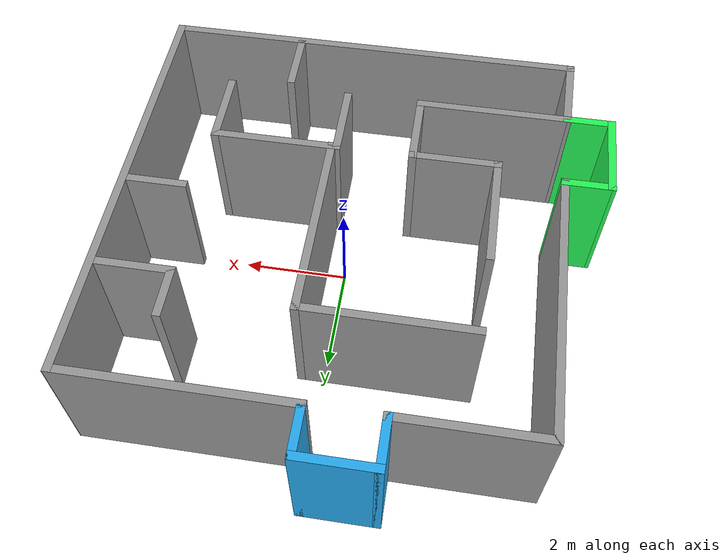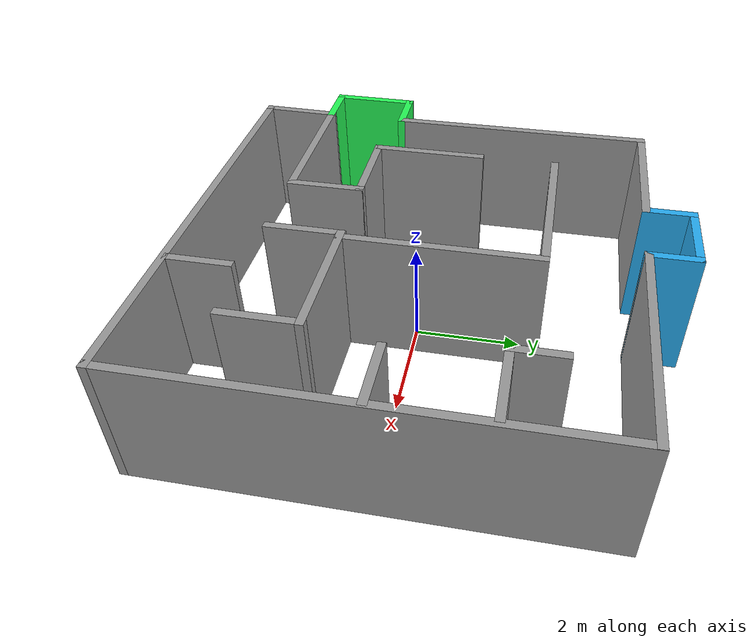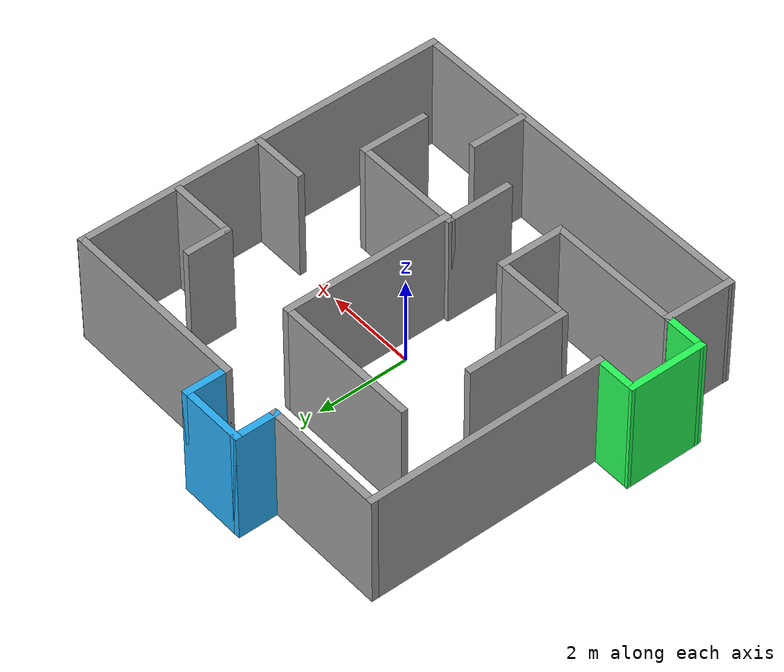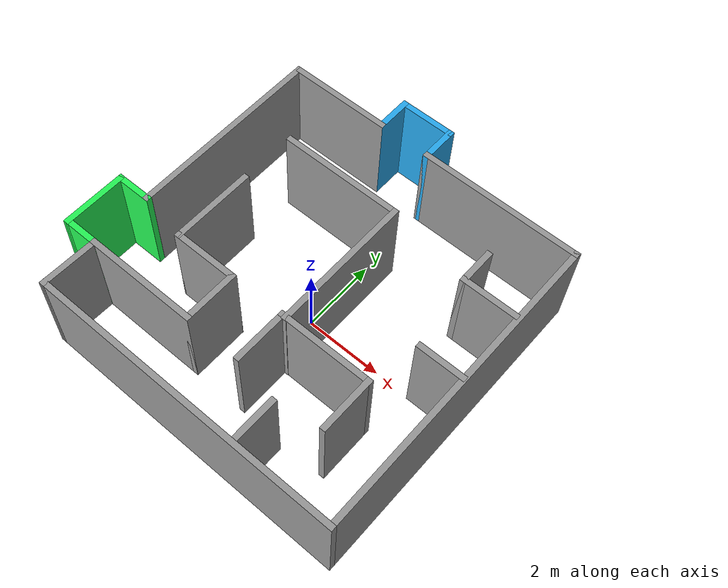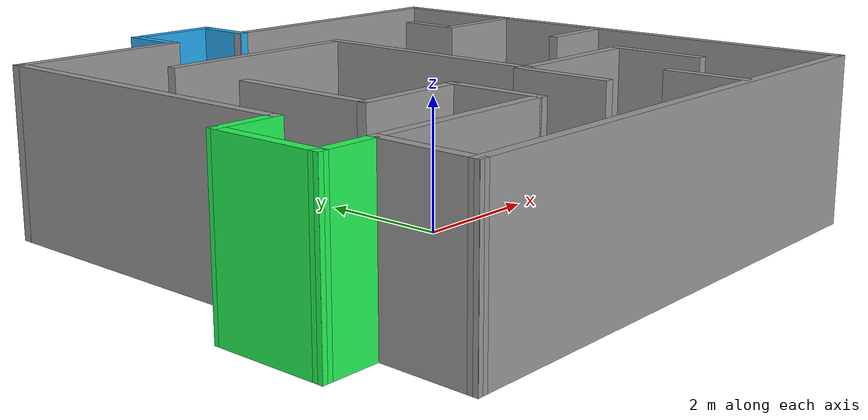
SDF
<?xml version='1.0'?>
<sdf version='1.7'>
  <model name='Enclosed_Maze_1'>
    <pose>-0.353266 0.403877 0 0 -0 0</pose>
    <link name='Wall_1'>
      <collision name='Wall_1_Collision'>
        <geometry>
          <box>
            <size>1 0.15 2.5</size>
          </box>
        </geometry>
        <pose>0 0 1.25 0 -0 0</pose>
      </collision>
      <visual name='Wall_1_Visual'>
        <pose>0 0 1.25 0 -0 0</pose>
        <geometry>
          <box>
            <size>1 0.15 2.5</size>
          </box>
        </geometry>
        <material>
          <script>
            <uri>file://media/materials/scripts/gazebo.material</uri>
            <name>Gazebo/Grey</name>
          </script>
          <ambient>0.152941 0.67451 0.945098 1</ambient>
        </material>
        <meta>
          <layer>0</layer>
        </meta>
      </visual>
      <pose>-1.0003 4.05097 0 0 -0 1.5708</pose>
    </link>
    <link name='Wall_10'>
      <collision name='Wall_10_Collision'>
        <geometry>
          <box>
            <size>2.75 0.15 2.5</size>
          </box>
        </geometry>
        <pose>0 0 1.25 0 -0 0</pose>
      </collision>
      <visual name='Wall_10_Visual'>
        <pose>0 0 1.25 0 -0 0</pose>
        <geometry>
          <box>
            <size>2.75 0.15 2.5</size>
          </box>
        </geometry>
        <material>
          <script>
            <uri>file://media/materials/scripts/gazebo.material</uri>
            <name>Gazebo/Grey</name>
          </script>
          <ambient>1 1 1 1</ambient>
        </material>
        <meta>
          <layer>0</layer>
        </meta>
      </visual>
      <pose>-2.3003 3.62597 0 0 -0 3.14159</pose>
    </link>
    <link name='Wall_12'>
      <collision name='Wall_12_Collision'>
        <geometry>
          <box>
            <size>4.25 0.15 2.5</size>
          </box>
        </geometry>
        <pose>0 0 1.25 0 -0 0</pose>
      </collision>
      <visual name='Wall_12_Visual'>
        <pose>0 0 1.25 0 -0 0</pose>
        <geometry>
          <box>
            <size>4.25 0.15 2.5</size>
          </box>
        </geometry>
        <material>
          <script>
            <uri>file://media/materials/scripts/gazebo.material</uri>
            <name>Gazebo/Grey</name>
          </script>
          <ambient>1 1 1 1</ambient>
        </material>
        <meta>
          <layer>0</layer>
        </meta>
      </visual>
      <pose>2.3997 3.62597 0 0 -0 0</pose>
    </link>
    <link name='Wall_14'>
      <collision name='Wall_14_Collision'>
        <geometry>
          <box>
            <size>1.25 0.15 2.5</size>
          </box>
        </geometry>
        <pose>0 0 1.25 0 -0 0</pose>
      </collision>
      <visual name='Wall_14_Visual'>
        <pose>0 0 1.25 0 -0 0</pose>
        <geometry>
          <box>
            <size>1.25 0.15 2.5</size>
          </box>
        </geometry>
        <material>
          <script>
            <uri>file://media/materials/scripts/gazebo.material</uri>
            <name>Gazebo/Grey</name>
          </script>
          <ambient>1 1 1 1</ambient>
        </material>
        <meta>
          <layer>0</layer>
        </meta>
      </visual>
      <pose>1.87568 -3.84782 0 0 -0 -1.5708</pose>
    </link>
    <link name='Wall_16'>
      <collision name='Wall_16_Collision'>
        <geometry>
          <box>
            <size>1.25 0.15 2.5</size>
          </box>
        </geometry>
        <pose>0 0 1.25 0 -0 0</pose>
      </collision>
      <visual name='Wall_16_Visual'>
        <pose>0 0 1.25 0 -0 0</pose>
        <geometry>
          <box>
            <size>1.25 0.15 2.5</size>
          </box>
        </geometry>
        <material>
          <script>
            <uri>file://media/materials/scripts/gazebo.material</uri>
            <name>Gazebo/Grey</name>
          </script>
          <ambient>1 1 1 1</ambient>
        </material>
        <meta>
          <layer>0</layer>
        </meta>
      </visual>
      <pose>3.87162 -0.361767 0 0 -0 3.14159</pose>
    </link>
    <link name='Wall_18'>
      <collision name='Wall_18_Collision'>
        <geometry>
          <box>
            <size>1 0.15 2.5</size>
          </box>
        </geometry>
        <pose>0 0 1.25 0 -0 0</pose>
      </collision>
      <visual name='Wall_18_Visual'>
        <pose>0 0 1.25 0 -0 0</pose>
        <geometry>
          <box>
            <size>1 0.15 2.5</size>
          </box>
        </geometry>
        <material>
          <script>
            <uri>file://media/materials/scripts/gazebo.material</uri>
            <name>Gazebo/Grey</name>
          </script>
          <ambient>1 1 1 1</ambient>
        </material>
        <meta>
          <layer>0</layer>
        </meta>
      </visual>
      <pose>3.02242 1.94168 0 0 -0 -1.5708</pose>
    </link>
    <link name='Wall_19'>
      <collision name='Wall_19_Collision'>
        <geometry>
          <box>
            <size>1.5 0.15 2.5</size>
          </box>
        </geometry>
        <pose>0 0 1.25 0 -0 0</pose>
      </collision>
      <visual name='Wall_19_Visual'>
        <pose>0 0 1.25 0 -0 0</pose>
        <geometry>
          <box>
            <size>1.5 0.15 2.5</size>
          </box>
        </geometry>
        <material>
          <script>
            <uri>file://media/materials/scripts/gazebo.material</uri>
            <name>Gazebo/Grey</name>
          </script>
          <ambient>1 1 1 1</ambient>
        </material>
        <meta>
          <layer>0</layer>
        </meta>
      </visual>
      <pose>3.69742 1.51668 0 0 -0 0</pose>
    </link>
    <link name='Wall_2'>
      <collision name='Wall_2_Collision'>
        <geometry>
          <box>
            <size>1.5 0.15 2.5</size>
          </box>
        </geometry>
        <pose>0 0 1.25 0 -0 0</pose>
      </collision>
      <visual name='Wall_2_Visual'>
        <pose>0 0 1.25 0 -0 0</pose>
        <geometry>
          <box>
            <size>1.5 0.15 2.5</size>
          </box>
        </geometry>
        <material>
          <script>
            <uri>file://media/materials/scripts/gazebo.material</uri>
            <name>Gazebo/Grey</name>
          </script>
          <ambient>0.152941 0.67451 0.945098 1</ambient>
        </material>
        <meta>
          <layer>0</layer>
        </meta>
      </visual>
      <pose>-0.325298 4.47597 0 0 -0 0</pose>
    </link>
    <link name='Wall_21'>
      <collision name='Wall_21_Collision'>
        <geometry>
          <box>
            <size>1.5 0.15 2.5</size>
          </box>
        </geometry>
        <pose>0 0 1.25 0 -0 0</pose>
      </collision>
      <visual name='Wall_21_Visual'>
        <pose>0 0 1.25 0 -0 0</pose>
        <geometry>
          <box>
            <size>1.5 0.15 2.5</size>
          </box>
        </geometry>
        <material>
          <script>
            <uri>file://media/materials/scripts/gazebo.material</uri>
            <name>Gazebo/Grey</name>
          </script>
          <ambient>1 1 1 1</ambient>
        </material>
        <meta>
          <layer>0</layer>
        </meta>
      </visual>
      <pose>3.03991 -2.36275 0 0 -0 1.5708</pose>
    </link>
    <link name='Wall_22'>
      <collision name='Wall_22_Collision'>
        <geometry>
          <box>
            <size>2.5 0.15 2.5</size>
          </box>
        </geometry>
        <pose>0 0 1.25 0 -0 0</pose>
      </collision>
      <visual name='Wall_22_Visual'>
        <pose>0 0 1.25 0 -0 0</pose>
        <geometry>
          <box>
            <size>2.5 0.15 2.5</size>
          </box>
        </geometry>
        <material>
          <script>
            <uri>file://media/materials/scripts/gazebo.material</uri>
            <name>Gazebo/Grey</name>
          </script>
          <ambient>1 1 1 1</ambient>
        </material>
        <meta>
          <layer>0</layer>
        </meta>
      </visual>
      <pose>1.86491 -1.68775 0 0 -0 3.14159</pose>
    </link>
    <link name='Wall_23'>
      <collision name='Wall_23_Collision'>
        <geometry>
          <box>
            <size>1.5 0.15 2.5</size>
          </box>
        </geometry>
        <pose>0 0 1.25 0 -0 0</pose>
      </collision>
      <visual name='Wall_23_Visual'>
        <pose>0 0 1.25 0 -0 0</pose>
        <geometry>
          <box>
            <size>1.5 0.15 2.5</size>
          </box>
        </geometry>
        <material>
          <script>
            <uri>file://media/materials/scripts/gazebo.material</uri>
            <name>Gazebo/Grey</name>
          </script>
          <ambient>1 1 1 1</ambient>
        </material>
        <meta>
          <layer>0</layer>
        </meta>
      </visual>
      <pose>0.689907 -2.36275 0 0 -0 -1.5708</pose>
    </link>
    <link name='Wall_25'>
      <collision name='Wall_25_Collision'>
        <geometry>
          <box>
            <size>3 0.15 2.5</size>
          </box>
        </geometry>
        <pose>0 0 1.25 0 -0 0</pose>
      </collision>
      <visual name='Wall_25_Visual'>
        <pose>0 0 1.25 0 -0 0</pose>
        <geometry>
          <box>
            <size>3 0.15 2.5</size>
          </box>
        </geometry>
        <material>
          <script>
            <uri>file://media/materials/scripts/gazebo.material</uri>
            <name>Gazebo/Grey</name>
          </script>
          <ambient>1 1 1 1</ambient>
        </material>
        <meta>
          <layer>0</layer>
        </meta>
      </visual>
      <pose>-2.18132 -3.05524 0 0 -0 0</pose>
    </link>
    <link name='Wall_26'>
      <collision name='Wall_26_Collision'>
        <geometry>
          <box>
            <size>1.5 0.15 2.5</size>
          </box>
        </geometry>
        <pose>0 0 1.25 0 -0 0</pose>
      </collision>
      <visual name='Wall_26_Visual'>
        <pose>0 0 1.25 0 -0 0</pose>
        <geometry>
          <box>
            <size>1.5 0.15 2.5</size>
          </box>
        </geometry>
        <material>
          <script>
            <uri>file://media/materials/scripts/gazebo.material</uri>
            <name>Gazebo/Grey</name>
          </script>
          <ambient>1 1 1 1</ambient>
        </material>
        <meta>
          <layer>0</layer>
        </meta>
      </visual>
      <pose>-0.756317 -2.38024 0 0 -0 1.5708</pose>
    </link>
    <link name='Wall_27'>
      <collision name='Wall_27_Collision'>
        <geometry>
          <box>
            <size>1.75 0.15 2.5</size>
          </box>
        </geometry>
        <pose>0 0 1.25 0 -0 0</pose>
      </collision>
      <visual name='Wall_27_Visual'>
        <pose>0 0 1.25 0 -0 0</pose>
        <geometry>
          <box>
            <size>1.75 0.15 2.5</size>
          </box>
        </geometry>
        <material>
          <script>
            <uri>file://media/materials/scripts/gazebo.material</uri>
            <name>Gazebo/Grey</name>
          </script>
          <ambient>1 1 1 1</ambient>
        </material>
        <meta>
          <layer>0</layer>
        </meta>
      </visual>
      <pose>-1.55632 -1.70524 0 0 -0 3.14159</pose>
    </link>
    <link name='Wall_28'>
      <collision name='Wall_28_Collision'>
        <geometry>
          <box>
            <size>2.25 0.15 2.5</size>
          </box>
        </geometry>
        <pose>0 0 1.25 0 -0 0</pose>
      </collision>
      <visual name='Wall_28_Visual'>
        <pose>0 0 1.25 0 -0 0</pose>
        <geometry>
          <box>
            <size>2.25 0.15 2.5</size>
          </box>
        </geometry>
        <material>
          <script>
            <uri>file://media/materials/scripts/gazebo.material</uri>
            <name>Gazebo/Grey</name>
          </script>
          <ambient>1 1 1 1</ambient>
        </material>
        <meta>
          <layer>0</layer>
        </meta>
      </visual>
      <pose>-2.35632 -0.655237 0 0 -0 1.5708</pose>
    </link>
    <link name='Wall_3'>
      <collision name='Wall_3_Collision'>
        <geometry>
          <box>
            <size>1 0.15 2.5</size>
          </box>
        </geometry>
        <pose>0 0 1.25 0 -0 0</pose>
      </collision>
      <visual name='Wall_3_Visual'>
        <pose>0 0 1.25 0 -0 0</pose>
        <geometry>
          <box>
            <size>1 0.15 2.5</size>
          </box>
        </geometry>
        <material>
          <script>
            <uri>file://media/materials/scripts/gazebo.material</uri>
            <name>Gazebo/Grey</name>
          </script>
          <ambient>0.152941 0.67451 0.945098 1</ambient>
        </material>
        <meta>
          <layer>0</layer>
        </meta>
      </visual>
      <pose>0.349702 4.05097 0 0 -0 -1.5708</pose>
    </link>
    <link name='Wall_31'>
      <collision name='Wall_31_Collision'>
        <geometry>
          <box>
            <size>3.75 0.15 2.5</size>
          </box>
        </geometry>
        <pose>0 0 1.25 0 -0 0</pose>
      </collision>
      <visual name='Wall_31_Visual'>
        <pose>0 0 1.25 0 -0 0</pose>
        <geometry>
          <box>
            <size>3.75 0.15 2.5</size>
          </box>
        </geometry>
        <material>
          <script>
            <uri>file://media/materials/scripts/gazebo.material</uri>
            <name>Gazebo/Grey</name>
          </script>
          <ambient>1 1 1 1</ambient>
        </material>
        <meta>
          <layer>0</layer>
        </meta>
      </visual>
      <pose>0.787948 0.101663 0 0 -0 -1.5708</pose>
    </link>
    <link name='Wall_34'>
      <collision name='Wall_34_Collision'>
        <geometry>
          <box>
            <size>3.25 0.15 2.5</size>
          </box>
        </geometry>
        <pose>0 0 1.25 0 -0 0</pose>
      </collision>
      <visual name='Wall_34_Visual'>
        <pose>0 0 1.25 0 -0 0</pose>
        <geometry>
          <box>
            <size>3.25 0.15 2.5</size>
          </box>
        </geometry>
        <material>
          <script>
            <uri>file://media/materials/scripts/gazebo.material</uri>
            <name>Gazebo/Grey</name>
          </script>
          <ambient>1 1 1 1</ambient>
        </material>
        <meta>
          <layer>0</layer>
        </meta>
      </visual>
      <pose>-0.762052 1.90166 0 0 -0 3.14159</pose>
    </link>
    <link name='Wall_36'>
      <collision name='Wall_36_Collision'>
        <geometry>
          <box>
            <size>5.25 0.15 2.5</size>
          </box>
        </geometry>
        <pose>0 0 1.25 0 -0 0</pose>
      </collision>
      <visual name='Wall_36_Visual'>
        <pose>0 0 1.25 0 -0 0</pose>
        <geometry>
          <box>
            <size>5.25 0.15 2.5</size>
          </box>
        </geometry>
        <material>
          <script>
            <uri>file://media/materials/scripts/gazebo.material</uri>
            <name>Gazebo/Grey</name>
          </script>
          <ambient>1 1 1 1</ambient>
        </material>
        <meta>
          <layer>0</layer>
        </meta>
      </visual>
      <pose>-3.6003 1.07597 0 0 -0 -1.5708</pose>
    </link>
    <link name='Wall_37'>
      <collision name='Wall_37_Collision'>
        <geometry>
          <box>
            <size>1 0.15 2.5</size>
          </box>
        </geometry>
        <pose>0 0 1.25 0 -0 0</pose>
      </collision>
      <visual name='Wall_37_Visual'>
        <pose>0 0 1.25 0 -0 0</pose>
        <geometry>
          <box>
            <size>1 0.15 2.5</size>
          </box>
        </geometry>
        <material>
          <script>
            <uri>file://media/materials/scripts/gazebo.material</uri>
            <name>Gazebo/Grey</name>
          </script>
          <ambient>0.145098 0.976471 0.337255 1</ambient>
        </material>
        <meta>
          <layer>0</layer>
        </meta>
      </visual>
      <pose>-4.0253 -1.47403 0 0 -0 3.14159</pose>
    </link>
    <link name='Wall_40'>
      <collision name='Wall_40_Collision'>
        <geometry>
          <box>
            <size>1 0.15 2.5</size>
          </box>
        </geometry>
        <pose>0 0 1.25 0 -0 0</pose>
      </collision>
      <visual name='Wall_40_Visual'>
        <pose>0 0 1.25 0 -0 0</pose>
        <geometry>
          <box>
            <size>1 0.15 2.5</size>
          </box>
        </geometry>
        <material>
          <script>
            <uri>file://media/materials/scripts/gazebo.material</uri>
            <name>Gazebo/Grey</name>
          </script>
          <ambient>0.145098 0.976471 0.337255 1</ambient>
        </material>
        <meta>
          <layer>0</layer>
        </meta>
      </visual>
      <pose>-4.03132 -3.05524 0 0 -0 3.14159</pose>
    </link>
    <link name='Wall_41'>
      <collision name='Wall_41_Collision'>
        <geometry>
          <box>
            <size>1.73121 0.15 2.5</size>
          </box>
        </geometry>
        <pose>0 0 1.25 0 -0 0</pose>
      </collision>
      <visual name='Wall_41_Visual'>
        <pose>0 0 1.25 0 -0 0</pose>
        <geometry>
          <box>
            <size>1.73121 0.15 2.5</size>
          </box>
        </geometry>
        <material>
          <script>
            <uri>file://media/materials/scripts/gazebo.material</uri>
            <name>Gazebo/Grey</name>
          </script>
          <ambient>0.145098 0.976471 0.337255 1</ambient>
        </material>
        <meta>
          <layer>0</layer>
        </meta>
      </visual>
      <pose>-4.45331 -2.26464 0 0 -0 1.56699</pose>
    </link>
    <link name='Wall_43'>
      <collision name='Wall_43_Collision'>
        <geometry>
          <box>
            <size>1.56928 0.15 2.5</size>
          </box>
        </geometry>
        <pose>0 0 1.25 0 -0 0</pose>
      </collision>
      <visual name='Wall_43_Visual'>
        <pose>0 0 1.25 0 -0 0</pose>
        <geometry>
          <box>
            <size>1.56928 0.15 2.5</size>
          </box>
        </geometry>
        <material>
          <script>
            <uri>file://media/materials/scripts/gazebo.material</uri>
            <name>Gazebo/Grey</name>
          </script>
          <ambient>1 1 1 1</ambient>
        </material>
        <meta>
          <layer>0</layer>
        </meta>
      </visual>
      <pose>-3.62486 -3.76464 0 0 -0 -1.59693</pose>
    </link>
    <link name='Wall_7'>
      <collision name='Wall_7_Collision'>
        <geometry>
          <box>
            <size>8.25 0.15 2.5</size>
          </box>
        </geometry>
        <pose>0 0 1.25 0 -0 0</pose>
      </collision>
      <visual name='Wall_7_Visual'>
        <pose>0 0 1.25 0 -0 0</pose>
        <geometry>
          <box>
            <size>8.25 0.15 2.5</size>
          </box>
        </geometry>
        <material>
          <script>
            <uri>file://media/materials/scripts/gazebo.material</uri>
            <name>Gazebo/Grey</name>
          </script>
          <ambient>1 1 1 1</ambient>
        </material>
        <meta>
          <layer>0</layer>
        </meta>
      </visual>
      <pose>4.4566 -0.424033 0 0 -0 -1.5708</pose>
    </link>
    <link name='Wall_8'>
      <collision name='Wall_8_Collision'>
        <geometry>
          <box>
            <size>8.25 0.15 2.5</size>
          </box>
        </geometry>
        <pose>0 0 1.25 0 -0 0</pose>
      </collision>
      <visual name='Wall_8_Visual'>
        <pose>0 0 1.25 0 -0 0</pose>
        <geometry>
          <box>
            <size>8.25 0.15 2.5</size>
          </box>
        </geometry>
        <material>
          <script>
            <uri>file://media/materials/scripts/gazebo.material</uri>
            <name>Gazebo/Grey</name>
          </script>
          <ambient>1 1 1 1</ambient>
        </material>
        <meta>
          <layer>0</layer>
        </meta>
      </visual>
      <pose>0.406602 -4.47403 0 0 -0 3.14159</pose>
    </link>
    <static>1</static>
  </model>
</sdf>
